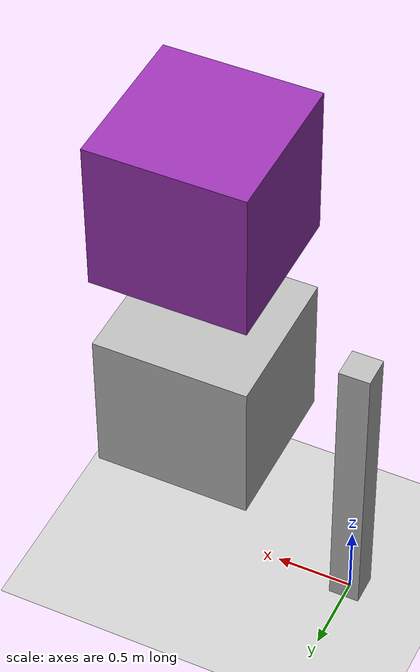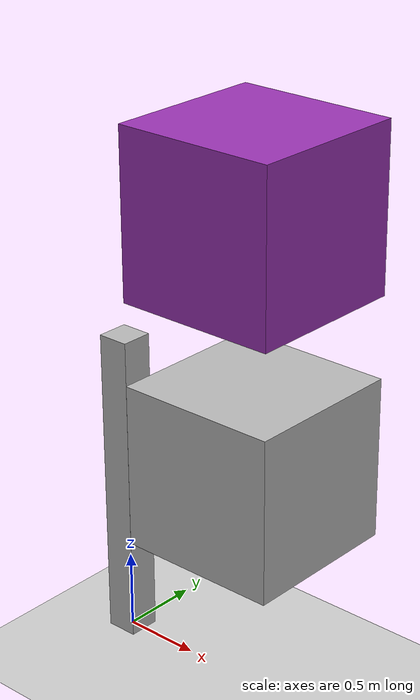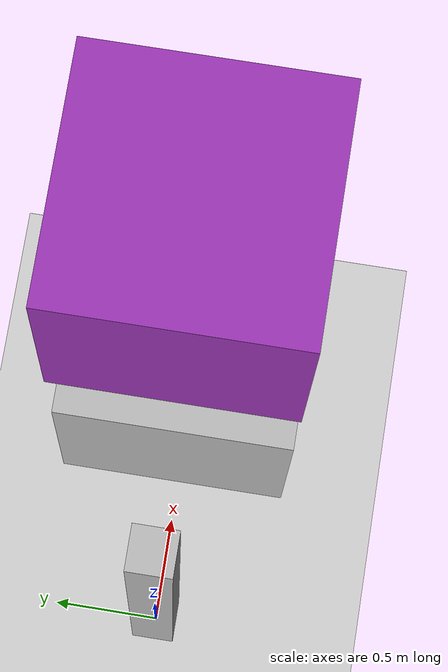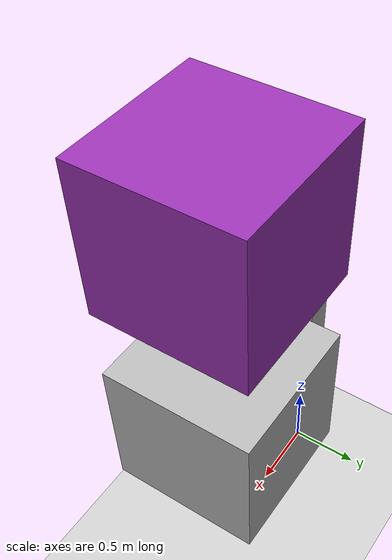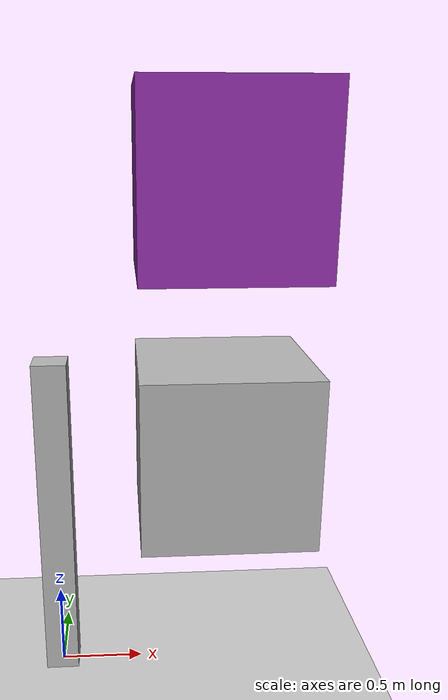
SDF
<?xml version="1.0" ?>
<sdf version="1.6">
  <world name="default">
    <include>
      <uri>model://ground_plane</uri>
    </include>

    <include>
      <uri>model://sun</uri>
    </include>

    <model name="post">
      <pose>0 0 1 0 0 0</pose>
      <link name="link">
        <collision name="collision">
          <geometry>
            <box>
              <size>0.2 0.2 2</size>
            </box>
          </geometry>
        </collision>
        <visual name="visual">
          <geometry>
            <box>
              <size>.2 .2 2</size>
            </box>
          </geometry>
        </visual>

        <sensor name="logical_camera" type="logical_camera">
          <pose>0 0 1 0 0 0</pose>
          <logical_camera>
            <near>0.55</near>
            <far>2.5</far>
            <horizontal_fov>1.05</horizontal_fov>
            <aspect_ratio>1.8</aspect_ratio>
          </logical_camera>

          <visualize>true</visualize>
          <always_on>true</always_on>
          <update_rate>10</update_rate>
        </sensor>
      </link>
    </model>

    <model name="base_target">
      <pose>1 0 1.5 0 0 0</pose>
      <link name="link">
        <collision name="collision">
          <geometry>
            <box>
              <size>1 1 1</size>
            </box>
          </geometry>
        </collision>
        <visual name="visual">
          <geometry>
            <box>
              <size>1 1 1</size>
            </box>
          </geometry>
        </visual>
      </link>
      <model name="nested_target">
        <pose>0 0 1.5 0 0 0</pose>
        <link name="link">
          <collision name="collision">
            <geometry>
              <box>
                <size>1 1 1</size>
              </box>
            </geometry>
          </collision>
          <visual name="visual">
            <geometry>
              <box>
                <size>1 1 1</size>
              </box>
            </geometry>
          <material>
            <script>
              <uri>file://media/materials/scripts/gazebo.material</uri>
              <name>Gazebo/Purple</name>
            </script>
          </material>
          </visual>
        </link>
      </model>
    </model>
  </world>
</sdf>
